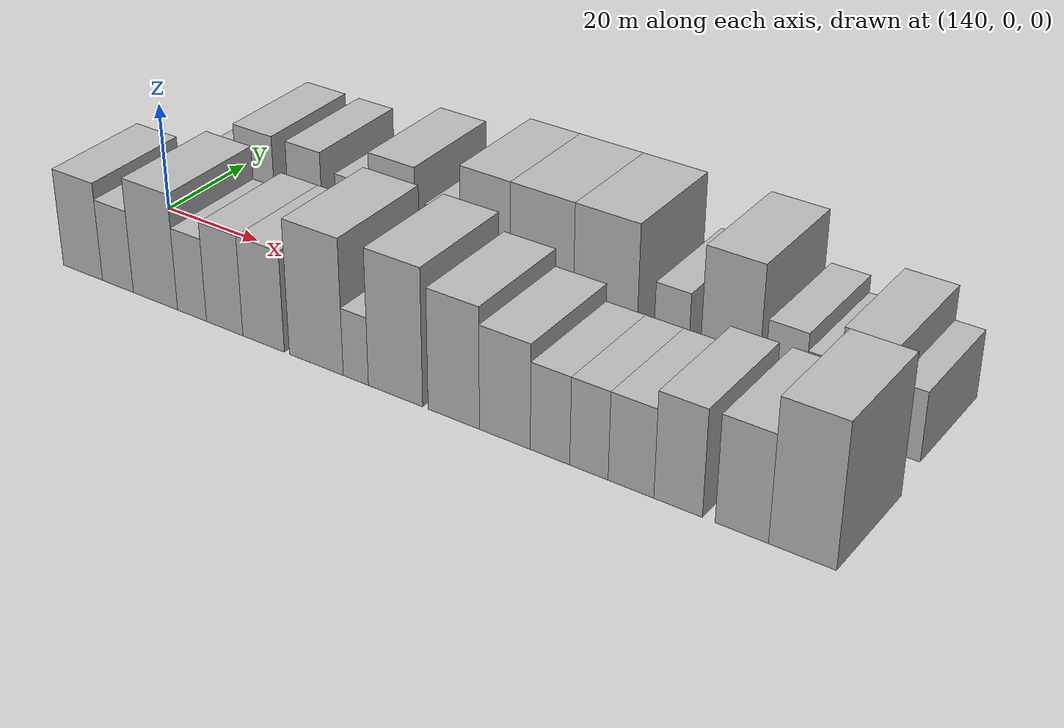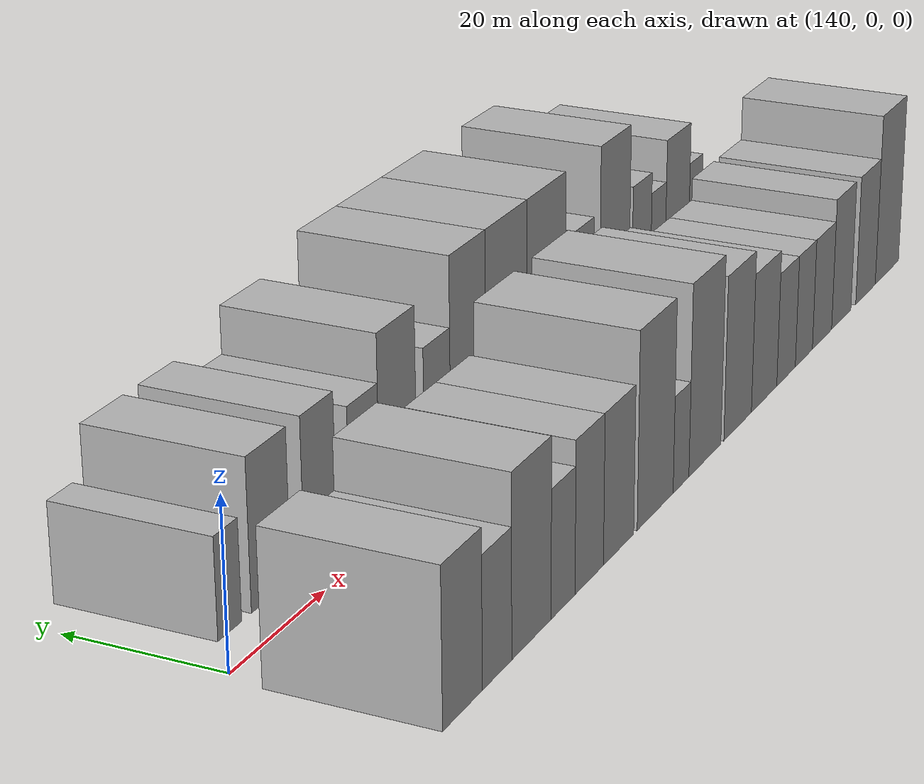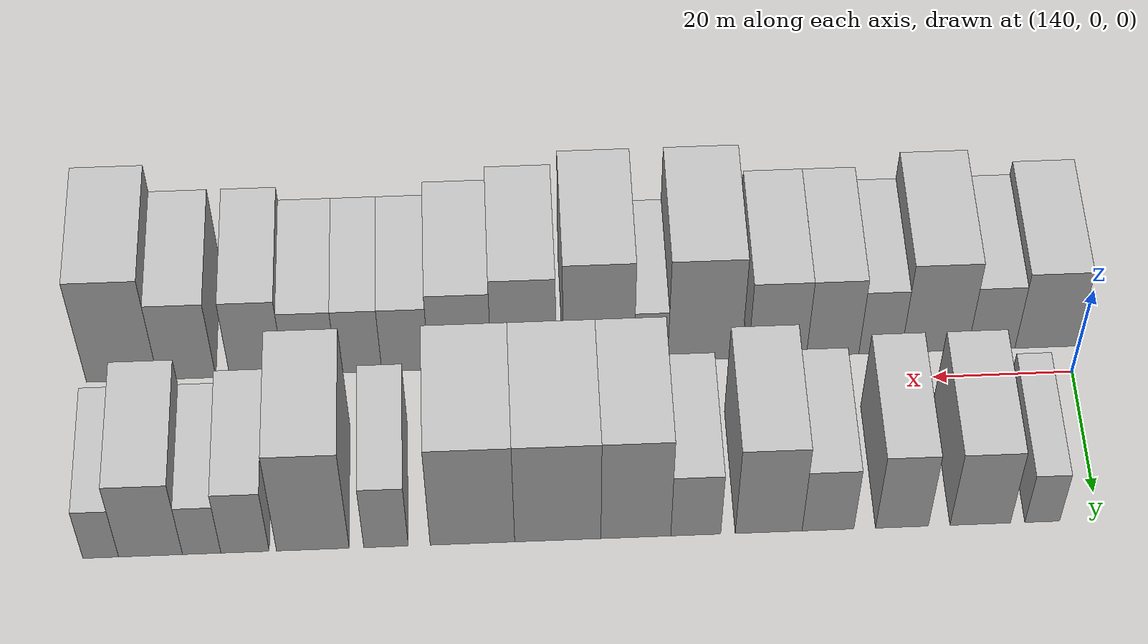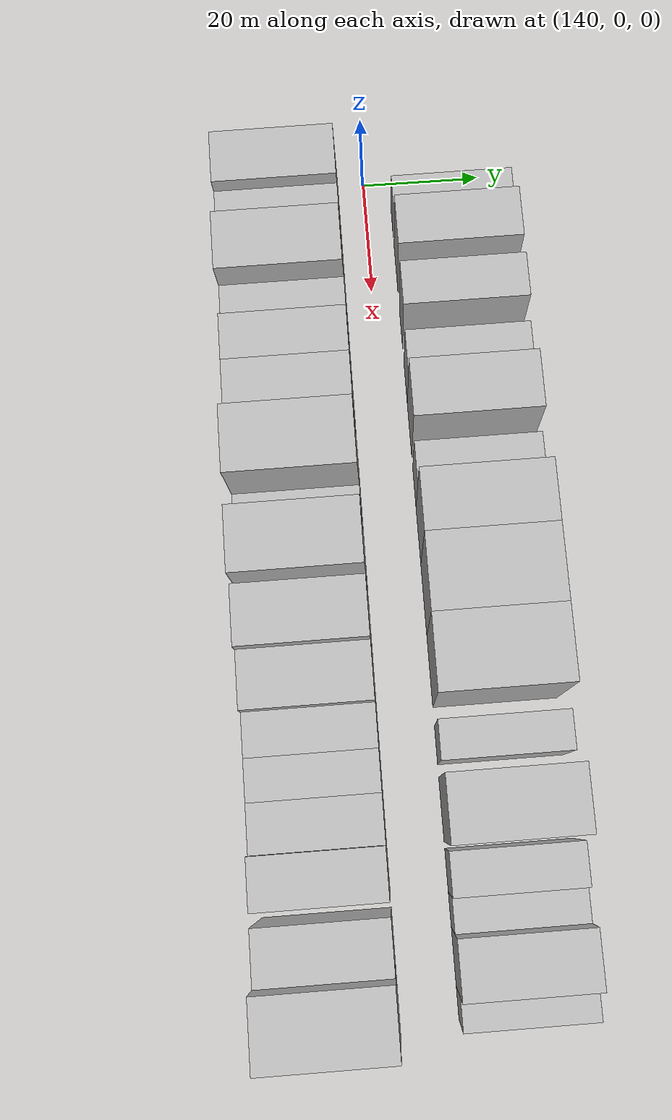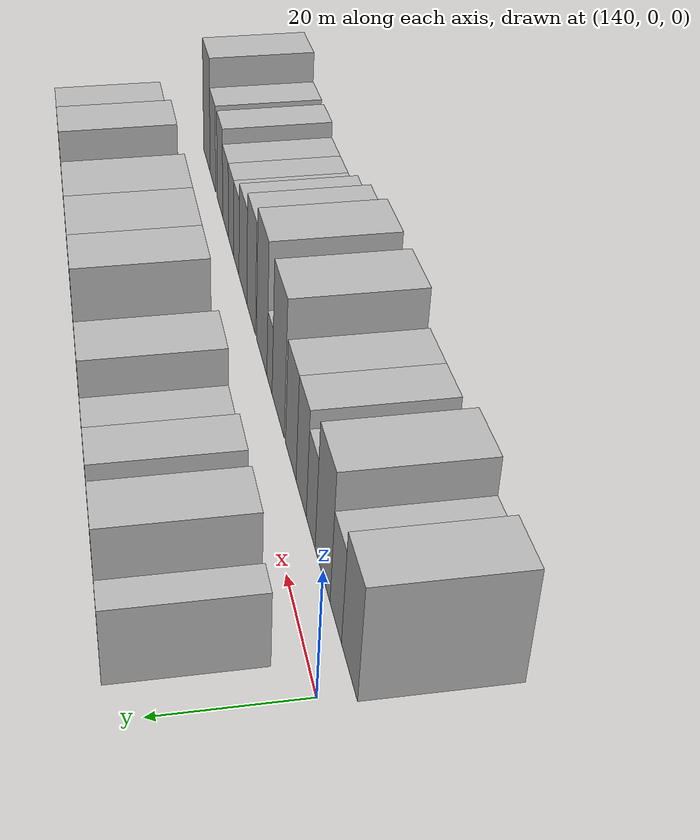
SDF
<sdf version="1.6">
 <world name="default">
  <model name="building_16">
   <static>1</static>
   <pose>147.7746 14.5000 0 0.000000 0.000000 1.570796</pose>
   <link name="link">
    <pose>0 0 6.00 0 0 0</pose>
    <collision name="collision"><geometry><box><size>20.0000 4.8389 12.0000</size></box></geometry></collision>
    <visual name="visual">
     <cast_shadows>0</cast_shadows>
     <geometry><box><size>20.0000 4.8389 12.0000</size></box></geometry>
     <material>
      <script>
       <uri>model://HANNAS_wall/materials/scripts</uri>
       <uri>model://HANNAS_wall/materials/textures</uri>
       <name>vrc/HANNAS_wall</name>
      </script>
     </material>
    </visual>
   </link>
  </model>
  <model name="building_17">
   <static>1</static>
   <pose>156.3841 14.5000 0 0.000000 0.000000 1.570796</pose>
   <link name="link">
    <pose>0 0 9.00 0 0 0</pose>
    <collision name="collision"><geometry><box><size>20.0000 8.3801 18.0000</size></box></geometry></collision>
    <visual name="visual">
     <cast_shadows>0</cast_shadows>
     <geometry><box><size>20.0000 8.3801 18.0000</size></box></geometry>
     <material>
      <script>
       <uri>model://HANNAS_wall/materials/scripts</uri>
       <uri>model://HANNAS_wall/materials/textures</uri>
       <name>vrc/HANNAS_wall</name>
      </script>
     </material>
    </visual>
   </link>
  </model>
  <model name="building_18">
   <static>1</static>
   <pose>167.2308 14.5000 0 0.000000 0.000000 1.570796</pose>
   <link name="link">
    <pose>0 0 9.00 0 0 0</pose>
    <collision name="collision"><geometry><box><size>20.0000 7.3133 18.0000</size></box></geometry></collision>
    <visual name="visual">
     <cast_shadows>0</cast_shadows>
     <geometry><box><size>20.0000 7.3133 18.0000</size></box></geometry>
     <material>
      <script>
       <uri>model://HANNAS_wall/materials/scripts</uri>
       <uri>model://HANNAS_wall/materials/textures</uri>
       <name>vrc/HANNAS_wall</name>
      </script>
     </material>
    </visual>
   </link>
  </model>
  <model name="building_19">
   <static>1</static>
   <pose>177.4684 14.5000 0 0.000000 0.000000 1.570796</pose>
   <link name="link">
    <pose>0 0 7.50 0 0 0</pose>
    <collision name="collision"><geometry><box><size>20.0000 7.1618 15.0000</size></box></geometry></collision>
    <visual name="visual">
     <cast_shadows>0</cast_shadows>
     <geometry><box><size>20.0000 7.1618 15.0000</size></box></geometry>
     <material>
      <script>
       <uri>model://HANNAS_wall/materials/scripts</uri>
       <uri>model://HANNAS_wall/materials/textures</uri>
       <name>vrc/HANNAS_wall</name>
      </script>
     </material>
    </visual>
   </link>
  </model>
  <model name="building_20">
   <static>1</static>
   <pose>185.6647 14.5000 0 0.000000 0.000000 1.570796</pose>
   <link name="link">
    <pose>0 0 10.50 0 0 0</pose>
    <collision name="collision"><geometry><box><size>20.0000 9.2309 21.0000</size></box></geometry></collision>
    <visual name="visual">
     <cast_shadows>0</cast_shadows>
     <geometry><box><size>20.0000 9.2309 21.0000</size></box></geometry>
     <material>
      <script>
       <uri>model://HANNAS_wall/materials/scripts</uri>
       <uri>model://HANNAS_wall/materials/textures</uri>
       <name>vrc/HANNAS_wall</name>
      </script>
     </material>
    </visual>
   </link>
  </model>
  <model name="building_21">
   <static>1</static>
   <pose>195.7234 14.5000 0 0.000000 0.000000 1.570796</pose>
   <link name="link">
    <pose>0 0 7.50 0 0 0</pose>
    <collision name="collision"><geometry><box><size>20.0000 6.8864 15.0000</size></box></geometry></collision>
    <visual name="visual">
     <cast_shadows>0</cast_shadows>
     <geometry><box><size>20.0000 6.8864 15.0000</size></box></geometry>
     <material>
      <script>
       <uri>model://HANNAS_wall/materials/scripts</uri>
       <uri>model://HANNAS_wall/materials/textures</uri>
       <name>vrc/HANNAS_wall</name>
      </script>
     </material>
    </visual>
   </link>
  </model>
  <model name="building_22">
   <static>1</static>
   <pose>203.9804 14.5000 0 0.000000 0.000000 1.570796</pose>
   <link name="link">
    <pose>0 0 12.00 0 0 0</pose>
    <collision name="collision"><geometry><box><size>20.0000 9.6276 24.0000</size></box></geometry></collision>
    <visual name="visual">
     <cast_shadows>0</cast_shadows>
     <geometry><box><size>20.0000 9.6276 24.0000</size></box></geometry>
     <material>
      <script>
       <uri>model://HANNAS_wall/materials/scripts</uri>
       <uri>model://HANNAS_wall/materials/textures</uri>
       <name>vrc/HANNAS_wall</name>
      </script>
     </material>
    </visual>
   </link>
  </model>
  <model name="building_23">
   <static>1</static>
   <pose>214.7245 14.5000 0 0.000000 0.000000 1.570796</pose>
   <link name="link">
    <pose>0 0 12.00 0 0 0</pose>
    <collision name="collision"><geometry><box><size>20.0000 11.8608 24.0000</size></box></geometry></collision>
    <visual name="visual">
     <cast_shadows>0</cast_shadows>
     <geometry><box><size>20.0000 11.8608 24.0000</size></box></geometry>
     <material>
      <script>
       <uri>model://HANNAS_wall/materials/scripts</uri>
       <uri>model://HANNAS_wall/materials/textures</uri>
       <name>vrc/HANNAS_wall</name>
      </script>
     </material>
    </visual>
   </link>
  </model>
  <model name="building_24">
   <static>1</static>
   <pose>226.4590 14.5000 0 0.000000 0.000000 1.570796</pose>
   <link name="link">
    <pose>0 0 12.00 0 0 0</pose>
    <collision name="collision"><geometry><box><size>20.0000 11.6083 24.0000</size></box></geometry></collision>
    <visual name="visual">
     <cast_shadows>0</cast_shadows>
     <geometry><box><size>20.0000 11.6083 24.0000</size></box></geometry>
     <material>
      <script>
       <uri>model://HANNAS_wall/materials/scripts</uri>
       <uri>model://HANNAS_wall/materials/textures</uri>
       <name>vrc/HANNAS_wall</name>
      </script>
     </material>
    </visual>
   </link>
  </model>
  <model name="building_25">
   <static>1</static>
   <pose>238.3125 14.5000 0 0.000000 0.000000 1.570796</pose>
   <link name="link">
    <pose>0 0 7.50 0 0 0</pose>
    <collision name="collision"><geometry><box><size>20.0000 6.0986 15.0000</size></box></geometry></collision>
    <visual name="visual">
     <cast_shadows>0</cast_shadows>
     <geometry><box><size>20.0000 6.0986 15.0000</size></box></geometry>
     <material>
      <script>
       <uri>model://HANNAS_wall/materials/scripts</uri>
       <uri>model://HANNAS_wall/materials/textures</uri>
       <name>vrc/HANNAS_wall</name>
      </script>
     </material>
    </visual>
   </link>
  </model>
  <model name="building_26">
   <static>1</static>
   <pose>248.3412 14.5000 0 0.000000 0.000000 1.570796</pose>
   <link name="link">
    <pose>0 0 12.00 0 0 0</pose>
    <collision name="collision"><geometry><box><size>20.0000 9.9587 24.0000</size></box></geometry></collision>
    <visual name="visual">
     <cast_shadows>0</cast_shadows>
     <geometry><box><size>20.0000 9.9587 24.0000</size></box></geometry>
     <material>
      <script>
       <uri>model://HANNAS_wall/materials/scripts</uri>
       <uri>model://HANNAS_wall/materials/textures</uri>
       <name>vrc/HANNAS_wall</name>
      </script>
     </material>
    </visual>
   </link>
  </model>
  <model name="building_27">
   <static>1</static>
   <pose>257.6245 14.5000 0 0.000000 0.000000 1.570796</pose>
   <link name="link">
    <pose>0 0 7.50 0 0 0</pose>
    <collision name="collision"><geometry><box><size>20.0000 6.6081 15.0000</size></box></geometry></collision>
    <visual name="visual">
     <cast_shadows>0</cast_shadows>
     <geometry><box><size>20.0000 6.6081 15.0000</size></box></geometry>
     <material>
      <script>
       <uri>model://HANNAS_wall/materials/scripts</uri>
       <uri>model://HANNAS_wall/materials/textures</uri>
       <name>vrc/HANNAS_wall</name>
      </script>
     </material>
    </visual>
   </link>
  </model>
  <model name="building_28">
   <static>1</static>
   <pose>263.5533 14.5000 0 0.000000 0.000000 1.570796</pose>
   <link name="link">
    <pose>0 0 6.00 0 0 0</pose>
    <collision name="collision"><geometry><box><size>20.0000 5.2495 12.0000</size></box></geometry></collision>
    <visual name="visual">
     <cast_shadows>0</cast_shadows>
     <geometry><box><size>20.0000 5.2495 12.0000</size></box></geometry>
     <material>
      <script>
       <uri>model://HANNAS_wall/materials/scripts</uri>
       <uri>model://HANNAS_wall/materials/textures</uri>
       <name>vrc/HANNAS_wall</name>
      </script>
     </material>
    </visual>
   </link>
  </model>
  <model name="building_29">
   <static>1</static>
   <pose>270.5398 14.5000 0 0.000000 0.000000 1.570796</pose>
   <link name="link">
    <pose>0 0 9.00 0 0 0</pose>
    <collision name="collision"><geometry><box><size>20.0000 8.7234 18.0000</size></box></geometry></collision>
    <visual name="visual">
     <cast_shadows>0</cast_shadows>
     <geometry><box><size>20.0000 8.7234 18.0000</size></box></geometry>
     <material>
      <script>
       <uri>model://HANNAS_wall/materials/scripts</uri>
       <uri>model://HANNAS_wall/materials/textures</uri>
       <name>vrc/HANNAS_wall</name>
      </script>
     </material>
    </visual>
   </link>
  </model>
  <model name="building_30">
   <static>1</static>
   <pose>277.3410 14.5000 0 0.000000 0.000000 1.570796</pose>
   <link name="link">
    <pose>0 0 6.00 0 0 0</pose>
    <collision name="collision"><geometry><box><size>20.0000 4.8791 12.0000</size></box></geometry></collision>
    <visual name="visual">
     <cast_shadows>0</cast_shadows>
     <geometry><box><size>20.0000 4.8791 12.0000</size></box></geometry>
     <material>
      <script>
       <uri>model://HANNAS_wall/materials/scripts</uri>
       <uri>model://HANNAS_wall/materials/textures</uri>
       <name>vrc/HANNAS_wall</name>
      </script>
     </material>
    </visual>
   </link>
  </model>
  <model name="building_45">
   <static>1</static>
   <pose>143.2275 -14.5000 0 0.000000 0.000000 1.570796</pose>
   <link name="link">
    <pose>0 0 9.00 0 0 0</pose>
    <collision name="collision"><geometry><box><size>20.0000 8.8450 18.0000</size></box></geometry></collision>
    <visual name="visual">
     <cast_shadows>0</cast_shadows>
     <geometry><box><size>20.0000 8.8450 18.0000</size></box></geometry>
     <material>
      <script>
       <uri>model://HANNAS_wall/materials/scripts</uri>
       <uri>model://HANNAS_wall/materials/textures</uri>
       <name>vrc/HANNAS_wall</name>
      </script>
     </material>
    </visual>
   </link>
  </model>
  <model name="building_46">
   <static>1</static>
   <pose>151.0718 -14.5000 0 0.000000 0.000000 1.570796</pose>
   <link name="link">
    <pose>0 0 7.50 0 0 0</pose>
    <collision name="collision"><geometry><box><size>20.0000 6.8437 15.0000</size></box></geometry></collision>
    <visual name="visual">
     <cast_shadows>0</cast_shadows>
     <geometry><box><size>20.0000 6.8437 15.0000</size></box></geometry>
     <material>
      <script>
       <uri>model://HANNAS_wall/materials/scripts</uri>
       <uri>model://HANNAS_wall/materials/textures</uri>
       <name>vrc/HANNAS_wall</name>
      </script>
     </material>
    </visual>
   </link>
  </model>
  <model name="building_47">
   <static>1</static>
   <pose>159.2963 -14.5000 0 0.000000 0.000000 1.570796</pose>
   <link name="link">
    <pose>0 0 10.50 0 0 0</pose>
    <collision name="collision"><geometry><box><size>20.0000 9.6053 21.0000</size></box></geometry></collision>
    <visual name="visual">
     <cast_shadows>0</cast_shadows>
     <geometry><box><size>20.0000 9.6053 21.0000</size></box></geometry>
     <material>
      <script>
       <uri>model://HANNAS_wall/materials/scripts</uri>
       <uri>model://HANNAS_wall/materials/textures</uri>
       <name>vrc/HANNAS_wall</name>
      </script>
     </material>
    </visual>
   </link>
  </model>
  <model name="building_48">
   <static>1</static>
   <pose>167.1680 -14.5000 0 0.000000 0.000000 1.570796</pose>
   <link name="link">
    <pose>0 0 7.50 0 0 0</pose>
    <collision name="collision"><geometry><box><size>20.0000 6.1380 15.0000</size></box></geometry></collision>
    <visual name="visual">
     <cast_shadows>0</cast_shadows>
     <geometry><box><size>20.0000 6.1380 15.0000</size></box></geometry>
     <material>
      <script>
       <uri>model://HANNAS_wall/materials/scripts</uri>
       <uri>model://HANNAS_wall/materials/textures</uri>
       <name>vrc/HANNAS_wall</name>
      </script>
     </material>
    </visual>
   </link>
  </model>
  <model name="building_49">
   <static>1</static>
   <pose>174.0187 -14.5000 0 0.000000 0.000000 1.570796</pose>
   <link name="link">
    <pose>0 0 9.00 0 0 0</pose>
    <collision name="collision"><geometry><box><size>20.0000 7.5634 18.0000</size></box></geometry></collision>
    <visual name="visual">
     <cast_shadows>0</cast_shadows>
     <geometry><box><size>20.0000 7.5634 18.0000</size></box></geometry>
     <material>
      <script>
       <uri>model://HANNAS_wall/materials/scripts</uri>
       <uri>model://HANNAS_wall/materials/textures</uri>
       <name>vrc/HANNAS_wall</name>
      </script>
     </material>
    </visual>
   </link>
  </model>
  <model name="building_50">
   <static>1</static>
   <pose>182.0059 -14.5000 0 0.000000 0.000000 1.570796</pose>
   <link name="link">
    <pose>0 0 9.00 0 0 0</pose>
    <collision name="collision"><geometry><box><size>20.0000 8.4109 18.0000</size></box></geometry></collision>
    <visual name="visual">
     <cast_shadows>0</cast_shadows>
     <geometry><box><size>20.0000 8.4109 18.0000</size></box></geometry>
     <material>
      <script>
       <uri>model://HANNAS_wall/materials/scripts</uri>
       <uri>model://HANNAS_wall/materials/textures</uri>
       <name>vrc/HANNAS_wall</name>
      </script>
     </material>
    </visual>
   </link>
  </model>
  <model name="building_51">
   <static>1</static>
   <pose>192.5098 -14.5000 0 0.000000 0.000000 1.570796</pose>
   <link name="link">
    <pose>0 0 12.00 0 0 0</pose>
    <collision name="collision"><geometry><box><size>20.0000 10.5970 24.0000</size></box></geometry></collision>
    <visual name="visual">
     <cast_shadows>0</cast_shadows>
     <geometry><box><size>20.0000 10.5970 24.0000</size></box></geometry>
     <material>
      <script>
       <uri>model://HANNAS_wall/materials/scripts</uri>
       <uri>model://HANNAS_wall/materials/textures</uri>
       <name>vrc/HANNAS_wall</name>
      </script>
     </material>
    </visual>
   </link>
  </model>
  <model name="building_52">
   <static>1</static>
   <pose>200.2227 -14.5000 0 0.000000 0.000000 1.570796</pose>
   <link name="link">
    <pose>0 0 6.00 0 0 0</pose>
    <collision name="collision"><geometry><box><size>20.0000 4.8288 12.0000</size></box></geometry></collision>
    <visual name="visual">
     <cast_shadows>0</cast_shadows>
     <geometry><box><size>20.0000 4.8288 12.0000</size></box></geometry>
     <material>
      <script>
       <uri>model://HANNAS_wall/materials/scripts</uri>
       <uri>model://HANNAS_wall/materials/textures</uri>
       <name>vrc/HANNAS_wall</name>
      </script>
     </material>
    </visual>
   </link>
  </model>
  <model name="building_53">
   <static>1</static>
   <pose>207.7254 -14.5000 0 0.000000 0.000000 1.570796</pose>
   <link name="link">
    <pose>0 0 12.00 0 0 0</pose>
    <collision name="collision"><geometry><box><size>20.0000 10.1766 24.0000</size></box></geometry></collision>
    <visual name="visual">
     <cast_shadows>0</cast_shadows>
     <geometry><box><size>20.0000 10.1766 24.0000</size></box></geometry>
     <material>
      <script>
       <uri>model://HANNAS_wall/materials/scripts</uri>
       <uri>model://HANNAS_wall/materials/textures</uri>
       <name>vrc/HANNAS_wall</name>
      </script>
     </material>
    </visual>
   </link>
  </model>
  <model name="building_54">
   <static>1</static>
   <pose>218.4557 -14.5000 0 0.000000 0.000000 1.570796</pose>
   <link name="link">
    <pose>0 0 10.50 0 0 0</pose>
    <collision name="collision"><geometry><box><size>20.0000 9.2840 21.0000</size></box></geometry></collision>
    <visual name="visual">
     <cast_shadows>0</cast_shadows>
     <geometry><box><size>20.0000 9.2840 21.0000</size></box></geometry>
     <material>
      <script>
       <uri>model://HANNAS_wall/materials/scripts</uri>
       <uri>model://HANNAS_wall/materials/textures</uri>
       <name>vrc/HANNAS_wall</name>
      </script>
     </material>
    </visual>
   </link>
  </model>
  <model name="building_55">
   <static>1</static>
   <pose>227.5716 -14.5000 0 0.000000 0.000000 1.570796</pose>
   <link name="link">
    <pose>0 0 9.00 0 0 0</pose>
    <collision name="collision"><geometry><box><size>20.0000 8.9478 18.0000</size></box></geometry></collision>
    <visual name="visual">
     <cast_shadows>0</cast_shadows>
     <geometry><box><size>20.0000 8.9478 18.0000</size></box></geometry>
     <material>
      <script>
       <uri>model://HANNAS_wall/materials/scripts</uri>
       <uri>model://HANNAS_wall/materials/textures</uri>
       <name>vrc/HANNAS_wall</name>
      </script>
     </material>
    </visual>
   </link>
  </model>
  <model name="building_56">
   <static>1</static>
   <pose>235.4330 -14.5000 0 0.000000 0.000000 1.570796</pose>
   <link name="link">
    <pose>0 0 7.50 0 0 0</pose>
    <collision name="collision"><geometry><box><size>20.0000 6.7750 15.0000</size></box></geometry></collision>
    <visual name="visual">
     <cast_shadows>0</cast_shadows>
     <geometry><box><size>20.0000 6.7750 15.0000</size></box></geometry>
     <material>
      <script>
       <uri>model://HANNAS_wall/materials/scripts</uri>
       <uri>model://HANNAS_wall/materials/textures</uri>
       <name>vrc/HANNAS_wall</name>
      </script>
     </material>
    </visual>
   </link>
  </model>
  <model name="building_57">
   <static>1</static>
   <pose>242.0465 -14.5000 0 0.000000 0.000000 1.570796</pose>
   <link name="link">
    <pose>0 0 7.50 0 0 0</pose>
    <collision name="collision"><geometry><box><size>20.0000 6.4520 15.0000</size></box></geometry></collision>
    <visual name="visual">
     <cast_shadows>0</cast_shadows>
     <geometry><box><size>20.0000 6.4520 15.0000</size></box></geometry>
     <material>
      <script>
       <uri>model://HANNAS_wall/materials/scripts</uri>
       <uri>model://HANNAS_wall/materials/textures</uri>
       <name>vrc/HANNAS_wall</name>
      </script>
     </material>
    </visual>
   </link>
  </model>
  <model name="building_58">
   <static>1</static>
   <pose>249.0186 -14.5000 0 0.000000 0.000000 1.570796</pose>
   <link name="link">
    <pose>0 0 7.50 0 0 0</pose>
    <collision name="collision"><geometry><box><size>20.0000 7.4922 15.0000</size></box></geometry></collision>
    <visual name="visual">
     <cast_shadows>0</cast_shadows>
     <geometry><box><size>20.0000 7.4922 15.0000</size></box></geometry>
     <material>
      <script>
       <uri>model://HANNAS_wall/materials/scripts</uri>
       <uri>model://HANNAS_wall/materials/textures</uri>
       <name>vrc/HANNAS_wall</name>
      </script>
     </material>
    </visual>
   </link>
  </model>
  <model name="building_59">
   <static>1</static>
   <pose>256.6563 -14.5000 0 0.000000 0.000000 1.570796</pose>
   <link name="link">
    <pose>0 0 9.00 0 0 0</pose>
    <collision name="collision"><geometry><box><size>20.0000 7.7832 18.0000</size></box></geometry></collision>
    <visual name="visual">
     <cast_shadows>0</cast_shadows>
     <geometry><box><size>20.0000 7.7832 18.0000</size></box></geometry>
     <material>
      <script>
       <uri>model://HANNAS_wall/materials/scripts</uri>
       <uri>model://HANNAS_wall/materials/textures</uri>
       <name>vrc/HANNAS_wall</name>
      </script>
     </material>
    </visual>
   </link>
  </model>
  <model name="building_60">
   <static>1</static>
   <pose>266.6721 -14.5000 0 0.000000 0.000000 1.570796</pose>
   <link name="link">
    <pose>0 0 9.00 0 0 0</pose>
    <collision name="collision"><geometry><box><size>20.0000 8.2484 18.0000</size></box></geometry></collision>
    <visual name="visual">
     <cast_shadows>0</cast_shadows>
     <geometry><box><size>20.0000 8.2484 18.0000</size></box></geometry>
     <material>
      <script>
       <uri>model://HANNAS_wall/materials/scripts</uri>
       <uri>model://HANNAS_wall/materials/textures</uri>
       <name>vrc/HANNAS_wall</name>
      </script>
     </material>
    </visual>
   </link>
  </model>
  <model name="building_61">
   <static>1</static>
   <pose>275.8996 -14.5000 0 0.000000 0.000000 1.570796</pose>
   <link name="link">
    <pose>0 0 12.00 0 0 0</pose>
    <collision name="collision"><geometry><box><size>20.0000 10.2065 24.0000</size></box></geometry></collision>
    <visual name="visual">
     <cast_shadows>0</cast_shadows>
     <geometry><box><size>20.0000 10.2065 24.0000</size></box></geometry>
     <material>
      <script>
       <uri>model://HANNAS_wall/materials/scripts</uri>
       <uri>model://HANNAS_wall/materials/textures</uri>
       <name>vrc/HANNAS_wall</name>
      </script>
     </material>
    </visual>
   </link>
  </model>
 </world>
</sdf>
